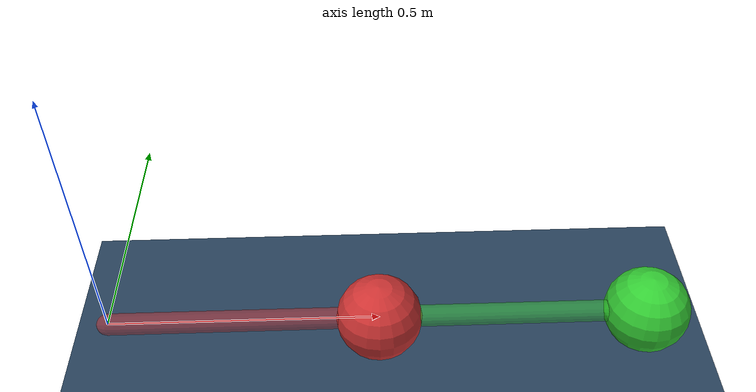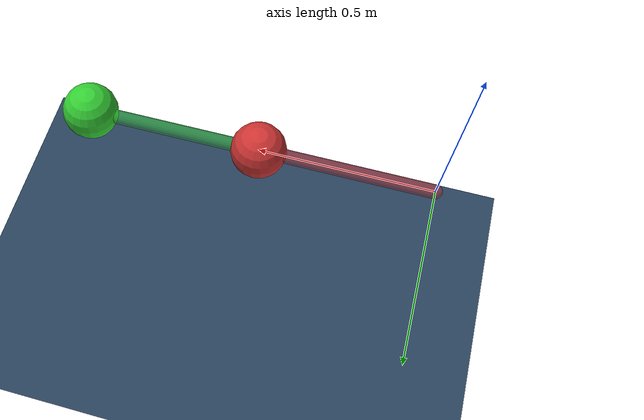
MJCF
<mujoco>
  <option gravity="0 0 -9.81" timestep="0.001"/>

  <asset>
    <texture name="grid" type="2d" builtin="checker" width="512" height="512" rgb1=".1 .2 .3" rgb2=".2 .3 .4"/>
    <material name="grid" texture="grid" texrepeat="1 1" texuniform="true" reflectance=".2"/>
  </asset>

  <worldbody>
    <light pos="0 0 2" mode="trackcom"/>
    <geom name="ground" type="plane" pos="0 0 -0.5" size="2 2 .1" material="grid"/>

    <body name="link1" pos="0 0 0">
      <joint name="joint1" type="hinge" axis="0 0 1" pos="0 0 0" damping="0.1"/>
      <geom type="capsule" fromto="0 0 0 0.5 0 0" size="0.02" rgba="0.8 0.2 0.2 0.5" mass="0.01"/>

      <body name="mass1" pos="0.5 0 0">
        <geom type="sphere" size="0.08" rgba="0.8 0.2 0.2 1" mass="1.0"/>

        <body name="link2" pos="0 0 0">
          <joint name="joint2" type="hinge" axis="0 0 1" pos="0 0 0" damping="0.1"/>
          <geom type="capsule" fromto="0 0 0 0.5 0 0" size="0.02" rgba="0.2 0.8 0.2 0.5" mass="0.01"/>

          <body name="mass2" pos="0.5 0 0">
            <geom type="sphere" size="0.08" rgba="0.2 0.8 0.2 1" mass="1.0"/>
            <site name="end_effector" pos="0 0 0" size="0.06" rgba="0 0 1 1"/>
          </body>
        </body>
      </body>
    </body>
  </worldbody>

  <actuator>
    <motor name="motor1" joint="joint1" gear="1" ctrllimited="true" ctrlrange="-50 50"/>
    <motor name="motor2" joint="joint2" gear="1" ctrllimited="true" ctrlrange="-50 50"/>
  </actuator>
</mujoco>
